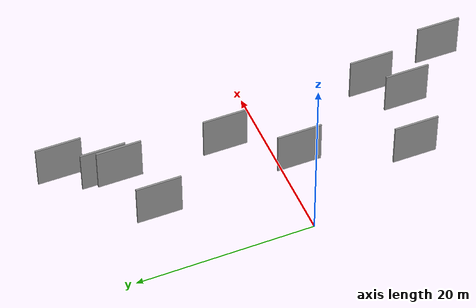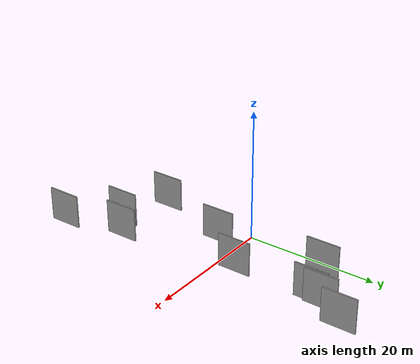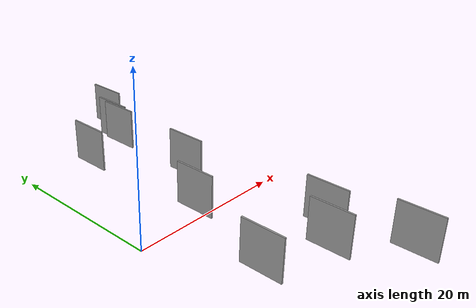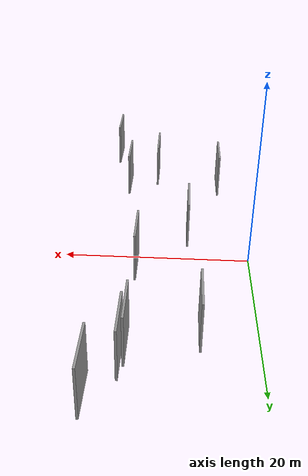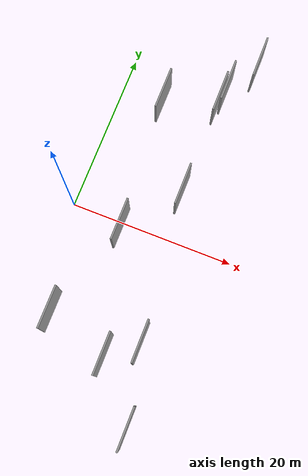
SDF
<sdf version="1.6">
 <world name="default">
  <scene>
   <sky><clouds><speed>12</speed></clouds></sky>
   <ambient>0.4 0.4 0.4 1</ambient>
   <background>0.7 0.7 0.7 1</background>
   <shadows>1</shadows>
  </scene>
  <gravity>0 0 -9.8066</gravity>
  <magnetic_field>6e-06 2.3e-05 -4.2e-05</magnetic_field>
  <physics default="0" name="default_physics" type="ode">
   <ode>
    <solver>
     <type>quick</type>
     <iters>10</iters>
     <sor>1.0</sor>
     <use_dynamic_moi_rescaling>0</use_dynamic_moi_rescaling>
    </solver>
    <constraints>
     <cfm>0</cfm>
     <erp>0.2</erp>
     <contact_max_correcting_vel>100</contact_max_correcting_vel>
     <contact_surface_layer>0.001</contact_surface_layer>
    </constraints>
   </ode>
   <max_step_size>0.004</max_step_size>
   <real_time_factor>1</real_time_factor>
   <real_time_update_rate>250</real_time_update_rate>
  </physics>
  <light name="sun" type="directional">
   <pose>0 0 10 0 0 0</pose>
   <diffuse>0.8 0.8 0.8 1</diffuse>
   <specular>0.2 0.2 0.2 1</specular>
   <attenuation>
    <range>1000</range>
    <constant>0.9</constant>
    <linear>0.01</linear>
    <quadratic>0.001</quadratic>
   </attenuation>
   <direction>-0.5 0.1 -0.9</direction>
  </light>
  <model name="grey_wall_1">
   <static>1</static>
   <pose>5.6181 15.1315 2.5 0.000000 0.000000 1.570796</pose>
   <link name="link">
    <pose>0 0 2.50 0 0 0</pose>
    <collision name="collision"><geometry><box><size>5.00 0.2 5.00</size></box></geometry></collision>
    <visual name="visual">
     <cast_shadows>0</cast_shadows>
     <geometry><box><size>5.00 0.2 5.00</size></box></geometry>
     <material>
      <script>
       <uri>model://grey_wall/materials/scripts</uri>
       <uri>model://grey_wall/materials/textures</uri>
       <name>vrc/grey_wall</name>
      </script>
     </material>
    </visual>
   </link>
  </model>
  <model name="grey_wall_2">
   <static>1</static>
   <pose>14.7233 22.8656 2.5 0.000000 0.000000 1.570796</pose>
   <link name="link">
    <pose>0 0 2.50 0 0 0</pose>
    <collision name="collision"><geometry><box><size>5.00 0.2 5.00</size></box></geometry></collision>
    <visual name="visual">
     <cast_shadows>0</cast_shadows>
     <geometry><box><size>5.00 0.2 5.00</size></box></geometry>
     <material>
      <script>
       <uri>model://grey_wall/materials/scripts</uri>
       <uri>model://grey_wall/materials/textures</uri>
       <name>vrc/grey_wall</name>
      </script>
     </material>
    </visual>
   </link>
  </model>
  <model name="grey_wall_3">
   <static>1</static>
   <pose>11.8293 5.2413 2.5 0.000000 0.000000 1.570796</pose>
   <link name="link">
    <pose>0 0 2.50 0 0 0</pose>
    <collision name="collision"><geometry><box><size>5.00 0.2 5.00</size></box></geometry></collision>
    <visual name="visual">
     <cast_shadows>0</cast_shadows>
     <geometry><box><size>5.00 0.2 5.00</size></box></geometry>
     <material>
      <script>
       <uri>model://grey_wall/materials/scripts</uri>
       <uri>model://grey_wall/materials/textures</uri>
       <name>vrc/grey_wall</name>
      </script>
     </material>
    </visual>
   </link>
  </model>
  <model name="grey_wall_4">
   <static>1</static>
   <pose>13.8164 -12.7082 2.5 0.000000 0.000000 1.570796</pose>
   <link name="link">
    <pose>0 0 2.50 0 0 0</pose>
    <collision name="collision"><geometry><box><size>5.00 0.2 5.00</size></box></geometry></collision>
    <visual name="visual">
     <cast_shadows>0</cast_shadows>
     <geometry><box><size>5.00 0.2 5.00</size></box></geometry>
     <material>
      <script>
       <uri>model://grey_wall/materials/scripts</uri>
       <uri>model://grey_wall/materials/textures</uri>
       <name>vrc/grey_wall</name>
      </script>
     </material>
    </visual>
   </link>
  </model>
  <model name="grey_wall_5">
   <static>1</static>
   <pose>3.1153 -12.9685 2.5 0.000000 0.000000 1.570796</pose>
   <link name="link">
    <pose>0 0 2.50 0 0 0</pose>
    <collision name="collision"><geometry><box><size>5.00 0.2 5.00</size></box></geometry></collision>
    <visual name="visual">
     <cast_shadows>0</cast_shadows>
     <geometry><box><size>5.00 0.2 5.00</size></box></geometry>
     <material>
      <script>
       <uri>model://grey_wall/materials/scripts</uri>
       <uri>model://grey_wall/materials/textures</uri>
       <name>vrc/grey_wall</name>
      </script>
     </material>
    </visual>
   </link>
  </model>
  <model name="grey_wall_6">
   <static>1</static>
   <pose>10.4740 -15.3921 2.5 0.000000 0.000000 1.570796</pose>
   <link name="link">
    <pose>0 0 2.50 0 0 0</pose>
    <collision name="collision"><geometry><box><size>5.00 0.2 5.00</size></box></geometry></collision>
    <visual name="visual">
     <cast_shadows>0</cast_shadows>
     <geometry><box><size>5.00 0.2 5.00</size></box></geometry>
     <material>
      <script>
       <uri>model://grey_wall/materials/scripts</uri>
       <uri>model://grey_wall/materials/textures</uri>
       <name>vrc/grey_wall</name>
      </script>
     </material>
    </visual>
   </link>
  </model>
  <model name="grey_wall_7">
   <static>1</static>
   <pose>15.7749 -21.6866 2.5 0.000000 0.000000 1.570796</pose>
   <link name="link">
    <pose>0 0 2.50 0 0 0</pose>
    <collision name="collision"><geometry><box><size>5.00 0.2 5.00</size></box></geometry></collision>
    <visual name="visual">
     <cast_shadows>0</cast_shadows>
     <geometry><box><size>5.00 0.2 5.00</size></box></geometry>
     <material>
      <script>
       <uri>model://grey_wall/materials/scripts</uri>
       <uri>model://grey_wall/materials/textures</uri>
       <name>vrc/grey_wall</name>
      </script>
     </material>
    </visual>
   </link>
  </model>
  <model name="grey_wall_8">
   <static>1</static>
   <pose>6.7288 -1.1314 2.5 0.000000 0.000000 1.570796</pose>
   <link name="link">
    <pose>0 0 2.50 0 0 0</pose>
    <collision name="collision"><geometry><box><size>5.00 0.2 5.00</size></box></geometry></collision>
    <visual name="visual">
     <cast_shadows>0</cast_shadows>
     <geometry><box><size>5.00 0.2 5.00</size></box></geometry>
     <material>
      <script>
       <uri>model://grey_wall/materials/scripts</uri>
       <uri>model://grey_wall/materials/textures</uri>
       <name>vrc/grey_wall</name>
      </script>
     </material>
    </visual>
   </link>
  </model>
  <model name="grey_wall_9">
   <static>1</static>
   <pose>12.2531 18.8130 2.5 0.000000 0.000000 1.570796</pose>
   <link name="link">
    <pose>0 0 2.50 0 0 0</pose>
    <collision name="collision"><geometry><box><size>5.00 0.2 5.00</size></box></geometry></collision>
    <visual name="visual">
     <cast_shadows>0</cast_shadows>
     <geometry><box><size>5.00 0.2 5.00</size></box></geometry>
     <material>
      <script>
       <uri>model://grey_wall/materials/scripts</uri>
       <uri>model://grey_wall/materials/textures</uri>
       <name>vrc/grey_wall</name>
      </script>
     </material>
    </visual>
   </link>
  </model>
  <model name="grey_wall_10">
   <static>1</static>
   <pose>11.8860 17.1831 2.5 0.000000 0.000000 1.570796</pose>
   <link name="link">
    <pose>0 0 2.50 0 0 0</pose>
    <collision name="collision"><geometry><box><size>5.00 0.2 5.00</size></box></geometry></collision>
    <visual name="visual">
     <cast_shadows>0</cast_shadows>
     <geometry><box><size>5.00 0.2 5.00</size></box></geometry>
     <material>
      <script>
       <uri>model://grey_wall/materials/scripts</uri>
       <uri>model://grey_wall/materials/textures</uri>
       <name>vrc/grey_wall</name>
      </script>
     </material>
    </visual>
   </link>
  </model>
 </world>
</sdf>
